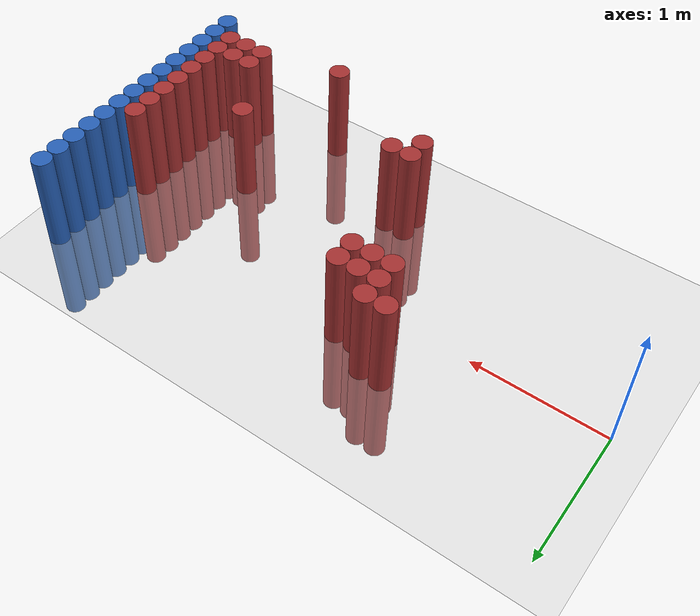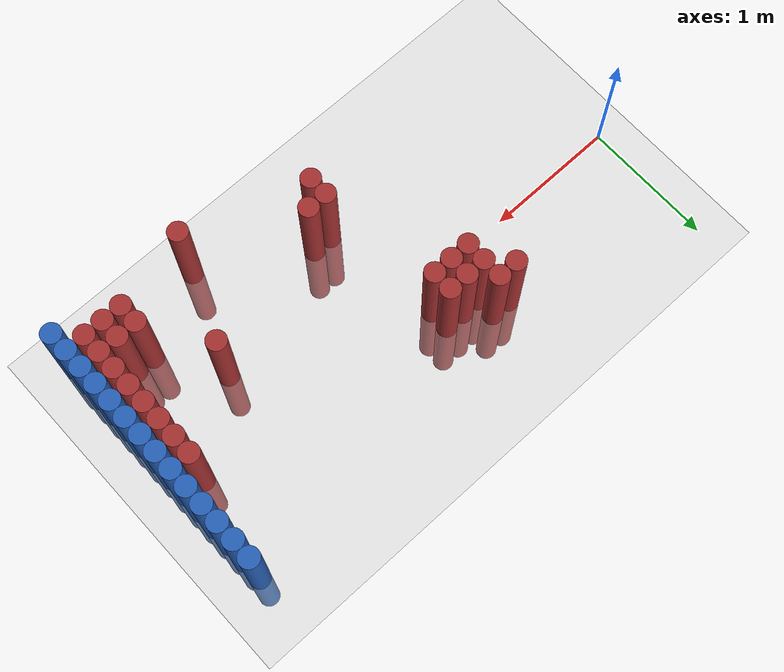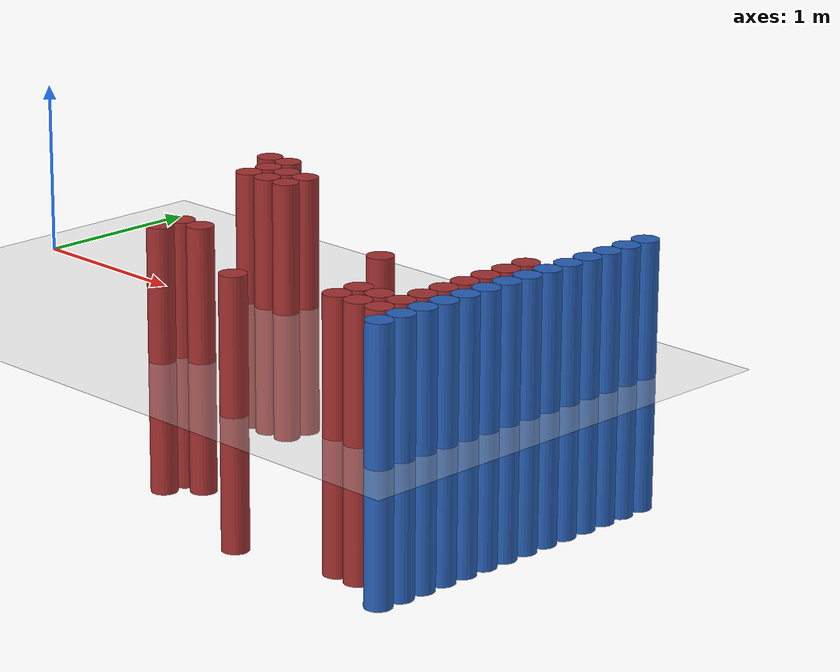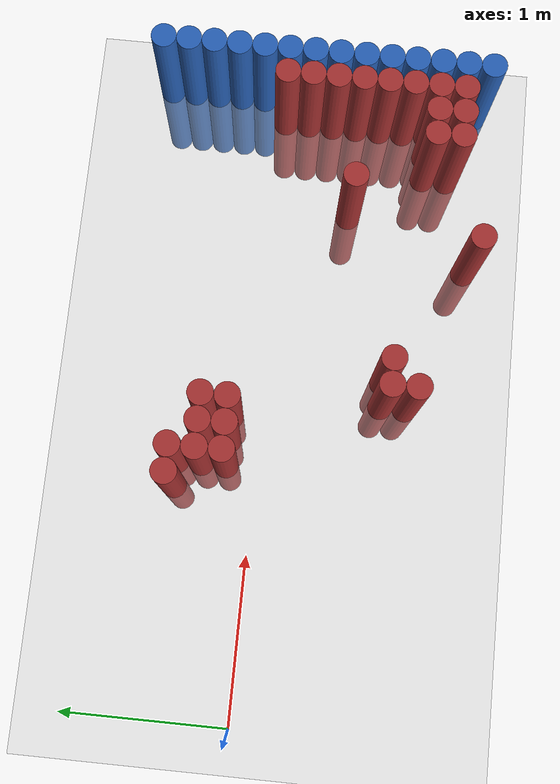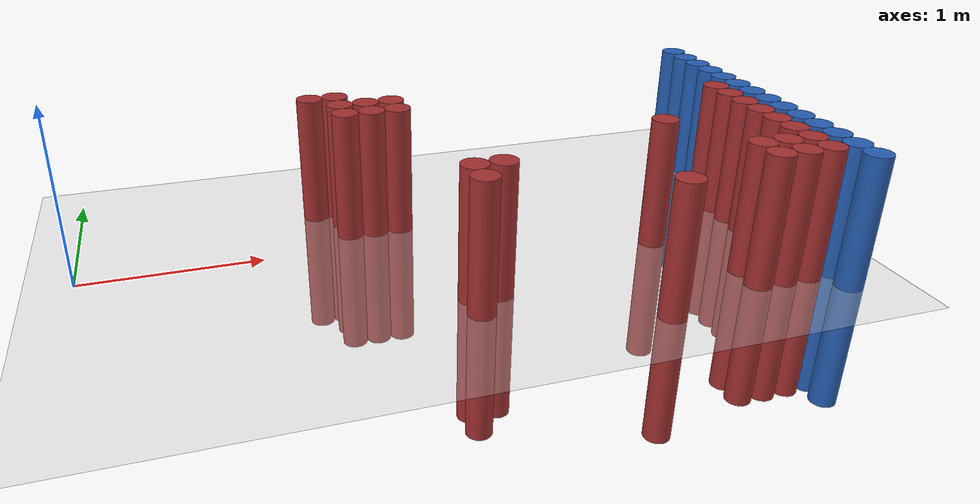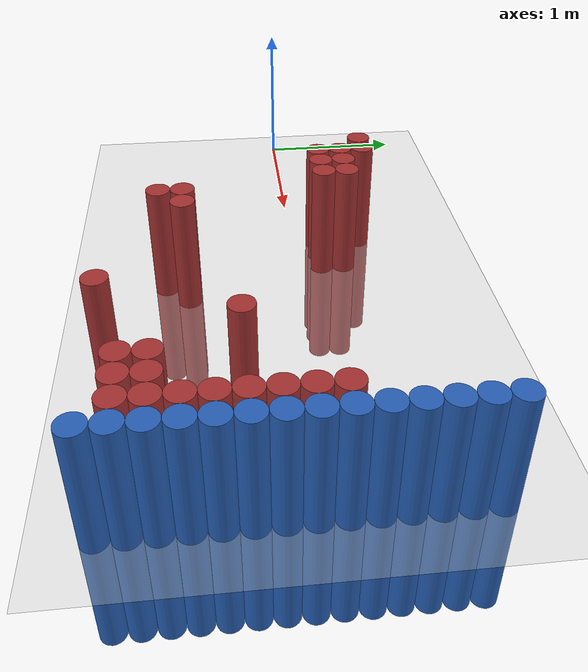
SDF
<sdf version="1.6">
 <world name="default">
  <model name="ground_plane">
   <static>1</static>
   <link name="link">
    <collision name="collision">
     <geometry><plane><normal>0 0 1</normal><size>100 100</size></plane></geometry>
     <surface><friction><ode><mu>100</mu><mu2>50</mu2></ode></friction></surface>
    </collision>
    <visual name="visual">
     <cast_shadows>0</cast_shadows>
     <geometry><plane><normal>0 0 1</normal><size>100 100</size></plane></geometry>
     <material>
      <script><uri>file://media/materials/scripts/gazebo.material</uri><name>Gazebo/Grey</name></script>
     </material>
    </visual>
   </link>
  </model>
  <model name="unit_cylinder_98">
   <static>1</static>
   <pose>3.925000 -1.175000 0.000000 0.000000 0.000000 0.000000</pose>
   <link name="link">
    <inertial>
     <mass>1</mass>
     <inertia><ixx>0.145833</ixx><ixy>0</ixy><ixz>0</ixz><iyy>0.145833</iyy><iyz>0</iyz><izz>0.125</izz></inertia>
    </inertial>
    <collision name="collision">
     <geometry><cylinder><radius>0.075000</radius><length>1.5</length></cylinder></geometry>
    </collision>
    <visual name="visual">
     <geometry><cylinder><radius>0.075000</radius><length>1.5</length></cylinder></geometry>
     <material>
      <ambient>0.152000 0.379000 0.720000 1</ambient>
      <diffuse>0.152000 0.379000 0.720000 1</diffuse>
     </material>
     <material>
      <script><name>Gazebo/Grey</name><uri>file://media/materials/scripts/gazebo.material</uri></script>
     </material>
    </visual>
   </link>
  </model>
  <model name="unit_cylinder_100">
   <static>1</static>
   <pose>3.925000 -1.025000 0.000000 0.000000 0.000000 0.000000</pose>
   <link name="link">
    <inertial>
     <mass>1</mass>
     <inertia><ixx>0.145833</ixx><ixy>0</ixy><ixz>0</ixz><iyy>0.145833</iyy><iyz>0</iyz><izz>0.125</izz></inertia>
    </inertial>
    <collision name="collision">
     <geometry><cylinder><radius>0.075000</radius><length>1.5</length></cylinder></geometry>
    </collision>
    <visual name="visual">
     <geometry><cylinder><radius>0.075000</radius><length>1.5</length></cylinder></geometry>
     <material>
      <ambient>0.152000 0.379000 0.720000 1</ambient>
      <diffuse>0.152000 0.379000 0.720000 1</diffuse>
     </material>
     <material>
      <script><name>Gazebo/Grey</name><uri>file://media/materials/scripts/gazebo.material</uri></script>
     </material>
    </visual>
   </link>
  </model>
  <model name="unit_cylinder_102">
   <static>1</static>
   <pose>3.925000 -0.875000 0.000000 0.000000 0.000000 0.000000</pose>
   <link name="link">
    <inertial>
     <mass>1</mass>
     <inertia><ixx>0.145833</ixx><ixy>0</ixy><ixz>0</ixz><iyy>0.145833</iyy><iyz>0</iyz><izz>0.125</izz></inertia>
    </inertial>
    <collision name="collision">
     <geometry><cylinder><radius>0.075000</radius><length>1.5</length></cylinder></geometry>
    </collision>
    <visual name="visual">
     <geometry><cylinder><radius>0.075000</radius><length>1.5</length></cylinder></geometry>
     <material>
      <ambient>0.152000 0.379000 0.720000 1</ambient>
      <diffuse>0.152000 0.379000 0.720000 1</diffuse>
     </material>
     <material>
      <script><name>Gazebo/Grey</name><uri>file://media/materials/scripts/gazebo.material</uri></script>
     </material>
    </visual>
   </link>
  </model>
  <model name="unit_cylinder_104">
   <static>1</static>
   <pose>3.925000 -0.725000 0.000000 0.000000 0.000000 0.000000</pose>
   <link name="link">
    <inertial>
     <mass>1</mass>
     <inertia><ixx>0.145833</ixx><ixy>0</ixy><ixz>0</ixz><iyy>0.145833</iyy><iyz>0</iyz><izz>0.125</izz></inertia>
    </inertial>
    <collision name="collision">
     <geometry><cylinder><radius>0.075000</radius><length>1.5</length></cylinder></geometry>
    </collision>
    <visual name="visual">
     <geometry><cylinder><radius>0.075000</radius><length>1.5</length></cylinder></geometry>
     <material>
      <ambient>0.152000 0.379000 0.720000 1</ambient>
      <diffuse>0.152000 0.379000 0.720000 1</diffuse>
     </material>
     <material>
      <script><name>Gazebo/Grey</name><uri>file://media/materials/scripts/gazebo.material</uri></script>
     </material>
    </visual>
   </link>
  </model>
  <model name="unit_cylinder_106">
   <static>1</static>
   <pose>3.925000 -0.575000 0.000000 0.000000 0.000000 0.000000</pose>
   <link name="link">
    <inertial>
     <mass>1</mass>
     <inertia><ixx>0.145833</ixx><ixy>0</ixy><ixz>0</ixz><iyy>0.145833</iyy><iyz>0</iyz><izz>0.125</izz></inertia>
    </inertial>
    <collision name="collision">
     <geometry><cylinder><radius>0.075000</radius><length>1.5</length></cylinder></geometry>
    </collision>
    <visual name="visual">
     <geometry><cylinder><radius>0.075000</radius><length>1.5</length></cylinder></geometry>
     <material>
      <ambient>0.152000 0.379000 0.720000 1</ambient>
      <diffuse>0.152000 0.379000 0.720000 1</diffuse>
     </material>
     <material>
      <script><name>Gazebo/Grey</name><uri>file://media/materials/scripts/gazebo.material</uri></script>
     </material>
    </visual>
   </link>
  </model>
  <model name="unit_cylinder_108">
   <static>1</static>
   <pose>3.925000 -0.425000 0.000000 0.000000 0.000000 0.000000</pose>
   <link name="link">
    <inertial>
     <mass>1</mass>
     <inertia><ixx>0.145833</ixx><ixy>0</ixy><ixz>0</ixz><iyy>0.145833</iyy><iyz>0</iyz><izz>0.125</izz></inertia>
    </inertial>
    <collision name="collision">
     <geometry><cylinder><radius>0.075000</radius><length>1.5</length></cylinder></geometry>
    </collision>
    <visual name="visual">
     <geometry><cylinder><radius>0.075000</radius><length>1.5</length></cylinder></geometry>
     <material>
      <ambient>0.152000 0.379000 0.720000 1</ambient>
      <diffuse>0.152000 0.379000 0.720000 1</diffuse>
     </material>
     <material>
      <script><name>Gazebo/Grey</name><uri>file://media/materials/scripts/gazebo.material</uri></script>
     </material>
    </visual>
   </link>
  </model>
  <model name="unit_cylinder_110">
   <static>1</static>
   <pose>3.925000 -0.275000 0.000000 0.000000 0.000000 0.000000</pose>
   <link name="link">
    <inertial>
     <mass>1</mass>
     <inertia><ixx>0.145833</ixx><ixy>0</ixy><ixz>0</ixz><iyy>0.145833</iyy><iyz>0</iyz><izz>0.125</izz></inertia>
    </inertial>
    <collision name="collision">
     <geometry><cylinder><radius>0.075000</radius><length>1.5</length></cylinder></geometry>
    </collision>
    <visual name="visual">
     <geometry><cylinder><radius>0.075000</radius><length>1.5</length></cylinder></geometry>
     <material>
      <ambient>0.152000 0.379000 0.720000 1</ambient>
      <diffuse>0.152000 0.379000 0.720000 1</diffuse>
     </material>
     <material>
      <script><name>Gazebo/Grey</name><uri>file://media/materials/scripts/gazebo.material</uri></script>
     </material>
    </visual>
   </link>
  </model>
  <model name="unit_cylinder_112">
   <static>1</static>
   <pose>3.925000 -0.125000 0.000000 0.000000 0.000000 0.000000</pose>
   <link name="link">
    <inertial>
     <mass>1</mass>
     <inertia><ixx>0.145833</ixx><ixy>0</ixy><ixz>0</ixz><iyy>0.145833</iyy><iyz>0</iyz><izz>0.125</izz></inertia>
    </inertial>
    <collision name="collision">
     <geometry><cylinder><radius>0.075000</radius><length>1.5</length></cylinder></geometry>
    </collision>
    <visual name="visual">
     <geometry><cylinder><radius>0.075000</radius><length>1.5</length></cylinder></geometry>
     <material>
      <ambient>0.152000 0.379000 0.720000 1</ambient>
      <diffuse>0.152000 0.379000 0.720000 1</diffuse>
     </material>
     <material>
      <script><name>Gazebo/Grey</name><uri>file://media/materials/scripts/gazebo.material</uri></script>
     </material>
    </visual>
   </link>
  </model>
  <model name="unit_cylinder_114">
   <static>1</static>
   <pose>3.925000 0.025000 0.000000 0.000000 0.000000 0.000000</pose>
   <link name="link">
    <inertial>
     <mass>1</mass>
     <inertia><ixx>0.145833</ixx><ixy>0</ixy><ixz>0</ixz><iyy>0.145833</iyy><iyz>0</iyz><izz>0.125</izz></inertia>
    </inertial>
    <collision name="collision">
     <geometry><cylinder><radius>0.075000</radius><length>1.5</length></cylinder></geometry>
    </collision>
    <visual name="visual">
     <geometry><cylinder><radius>0.075000</radius><length>1.5</length></cylinder></geometry>
     <material>
      <ambient>0.152000 0.379000 0.720000 1</ambient>
      <diffuse>0.152000 0.379000 0.720000 1</diffuse>
     </material>
     <material>
      <script><name>Gazebo/Grey</name><uri>file://media/materials/scripts/gazebo.material</uri></script>
     </material>
    </visual>
   </link>
  </model>
  <model name="unit_cylinder_116">
   <static>1</static>
   <pose>3.925000 0.175000 0.000000 0.000000 0.000000 0.000000</pose>
   <link name="link">
    <inertial>
     <mass>1</mass>
     <inertia><ixx>0.145833</ixx><ixy>0</ixy><ixz>0</ixz><iyy>0.145833</iyy><iyz>0</iyz><izz>0.125</izz></inertia>
    </inertial>
    <collision name="collision">
     <geometry><cylinder><radius>0.075000</radius><length>1.5</length></cylinder></geometry>
    </collision>
    <visual name="visual">
     <geometry><cylinder><radius>0.075000</radius><length>1.5</length></cylinder></geometry>
     <material>
      <ambient>0.152000 0.379000 0.720000 1</ambient>
      <diffuse>0.152000 0.379000 0.720000 1</diffuse>
     </material>
     <material>
      <script><name>Gazebo/Grey</name><uri>file://media/materials/scripts/gazebo.material</uri></script>
     </material>
    </visual>
   </link>
  </model>
  <model name="unit_cylinder_118">
   <static>1</static>
   <pose>3.925000 0.325000 0.000000 0.000000 0.000000 0.000000</pose>
   <link name="link">
    <inertial>
     <mass>1</mass>
     <inertia><ixx>0.145833</ixx><ixy>0</ixy><ixz>0</ixz><iyy>0.145833</iyy><iyz>0</iyz><izz>0.125</izz></inertia>
    </inertial>
    <collision name="collision">
     <geometry><cylinder><radius>0.075000</radius><length>1.5</length></cylinder></geometry>
    </collision>
    <visual name="visual">
     <geometry><cylinder><radius>0.075000</radius><length>1.5</length></cylinder></geometry>
     <material>
      <ambient>0.152000 0.379000 0.720000 1</ambient>
      <diffuse>0.152000 0.379000 0.720000 1</diffuse>
     </material>
     <material>
      <script><name>Gazebo/Grey</name><uri>file://media/materials/scripts/gazebo.material</uri></script>
     </material>
    </visual>
   </link>
  </model>
  <model name="unit_cylinder_120">
   <static>1</static>
   <pose>3.925000 0.475000 0.000000 0.000000 0.000000 0.000000</pose>
   <link name="link">
    <inertial>
     <mass>1</mass>
     <inertia><ixx>0.145833</ixx><ixy>0</ixy><ixz>0</ixz><iyy>0.145833</iyy><iyz>0</iyz><izz>0.125</izz></inertia>
    </inertial>
    <collision name="collision">
     <geometry><cylinder><radius>0.075000</radius><length>1.5</length></cylinder></geometry>
    </collision>
    <visual name="visual">
     <geometry><cylinder><radius>0.075000</radius><length>1.5</length></cylinder></geometry>
     <material>
      <ambient>0.152000 0.379000 0.720000 1</ambient>
      <diffuse>0.152000 0.379000 0.720000 1</diffuse>
     </material>
     <material>
      <script><name>Gazebo/Grey</name><uri>file://media/materials/scripts/gazebo.material</uri></script>
     </material>
    </visual>
   </link>
  </model>
  <model name="unit_cylinder_122">
   <static>1</static>
   <pose>3.925000 0.625000 0.000000 0.000000 0.000000 0.000000</pose>
   <link name="link">
    <inertial>
     <mass>1</mass>
     <inertia><ixx>0.145833</ixx><ixy>0</ixy><ixz>0</ixz><iyy>0.145833</iyy><iyz>0</iyz><izz>0.125</izz></inertia>
    </inertial>
    <collision name="collision">
     <geometry><cylinder><radius>0.075000</radius><length>1.5</length></cylinder></geometry>
    </collision>
    <visual name="visual">
     <geometry><cylinder><radius>0.075000</radius><length>1.5</length></cylinder></geometry>
     <material>
      <ambient>0.152000 0.379000 0.720000 1</ambient>
      <diffuse>0.152000 0.379000 0.720000 1</diffuse>
     </material>
     <material>
      <script><name>Gazebo/Grey</name><uri>file://media/materials/scripts/gazebo.material</uri></script>
     </material>
    </visual>
   </link>
  </model>
  <model name="unit_cylinder_124">
   <static>1</static>
   <pose>3.925000 0.775000 0.000000 0.000000 0.000000 0.000000</pose>
   <link name="link">
    <inertial>
     <mass>1</mass>
     <inertia><ixx>0.145833</ixx><ixy>0</ixy><ixz>0</ixz><iyy>0.145833</iyy><iyz>0</iyz><izz>0.125</izz></inertia>
    </inertial>
    <collision name="collision">
     <geometry><cylinder><radius>0.075000</radius><length>1.5</length></cylinder></geometry>
    </collision>
    <visual name="visual">
     <geometry><cylinder><radius>0.075000</radius><length>1.5</length></cylinder></geometry>
     <material>
      <ambient>0.152000 0.379000 0.720000 1</ambient>
      <diffuse>0.152000 0.379000 0.720000 1</diffuse>
     </material>
     <material>
      <script><name>Gazebo/Grey</name><uri>file://media/materials/scripts/gazebo.material</uri></script>
     </material>
    </visual>
   </link>
  </model>
  <model name="unit_cylinder_312">
   <static>1</static>
   <pose>1.375000 0.475000 0.000000 0.000000 0.000000 0.000000</pose>
   <link name="link">
    <inertial>
     <mass>1</mass>
     <inertia><ixx>0.145833</ixx><ixy>0</ixy><ixz>0</ixz><iyy>0.145833</iyy><iyz>0</iyz><izz>0.125</izz></inertia>
    </inertial>
    <collision name="collision">
     <geometry><cylinder><radius>0.075000</radius><length>1.5</length></cylinder></geometry>
    </collision>
    <visual name="visual">
     <geometry><cylinder><radius>0.075000</radius><length>1.5</length></cylinder></geometry>
     <material>
      <ambient>0.648000 0.192000 0.192000 1</ambient>
      <diffuse>0.648000 0.192000 0.192000 1</diffuse>
     </material>
     <material>
      <script><name>Gazebo/Grey</name><uri>file://media/materials/scripts/gazebo.material</uri></script>
     </material>
    </visual>
   </link>
  </model>
  <model name="unit_cylinder_314">
   <static>1</static>
   <pose>1.525000 0.175000 0.000000 0.000000 0.000000 0.000000</pose>
   <link name="link">
    <inertial>
     <mass>1</mass>
     <inertia><ixx>0.145833</ixx><ixy>0</ixy><ixz>0</ixz><iyy>0.145833</iyy><iyz>0</iyz><izz>0.125</izz></inertia>
    </inertial>
    <collision name="collision">
     <geometry><cylinder><radius>0.075000</radius><length>1.5</length></cylinder></geometry>
    </collision>
    <visual name="visual">
     <geometry><cylinder><radius>0.075000</radius><length>1.5</length></cylinder></geometry>
     <material>
      <ambient>0.648000 0.192000 0.192000 1</ambient>
      <diffuse>0.648000 0.192000 0.192000 1</diffuse>
     </material>
     <material>
      <script><name>Gazebo/Grey</name><uri>file://media/materials/scripts/gazebo.material</uri></script>
     </material>
    </visual>
   </link>
  </model>
  <model name="unit_cylinder_315">
   <static>1</static>
   <pose>1.525000 0.325000 0.000000 0.000000 0.000000 0.000000</pose>
   <link name="link">
    <inertial>
     <mass>1</mass>
     <inertia><ixx>0.145833</ixx><ixy>0</ixy><ixz>0</ixz><iyy>0.145833</iyy><iyz>0</iyz><izz>0.125</izz></inertia>
    </inertial>
    <collision name="collision">
     <geometry><cylinder><radius>0.075000</radius><length>1.5</length></cylinder></geometry>
    </collision>
    <visual name="visual">
     <geometry><cylinder><radius>0.075000</radius><length>1.5</length></cylinder></geometry>
     <material>
      <ambient>0.648000 0.192000 0.192000 1</ambient>
      <diffuse>0.648000 0.192000 0.192000 1</diffuse>
     </material>
     <material>
      <script><name>Gazebo/Grey</name><uri>file://media/materials/scripts/gazebo.material</uri></script>
     </material>
    </visual>
   </link>
  </model>
  <model name="unit_cylinder_316">
   <static>1</static>
   <pose>1.525000 0.475000 0.000000 0.000000 0.000000 0.000000</pose>
   <link name="link">
    <inertial>
     <mass>1</mass>
     <inertia><ixx>0.145833</ixx><ixy>0</ixy><ixz>0</ixz><iyy>0.145833</iyy><iyz>0</iyz><izz>0.125</izz></inertia>
    </inertial>
    <collision name="collision">
     <geometry><cylinder><radius>0.075000</radius><length>1.5</length></cylinder></geometry>
    </collision>
    <visual name="visual">
     <geometry><cylinder><radius>0.075000</radius><length>1.5</length></cylinder></geometry>
     <material>
      <ambient>0.648000 0.192000 0.192000 1</ambient>
      <diffuse>0.648000 0.192000 0.192000 1</diffuse>
     </material>
     <material>
      <script><name>Gazebo/Grey</name><uri>file://media/materials/scripts/gazebo.material</uri></script>
     </material>
    </visual>
   </link>
  </model>
  <model name="unit_cylinder_319">
   <static>1</static>
   <pose>1.675000 0.175000 0.000000 0.000000 0.000000 0.000000</pose>
   <link name="link">
    <inertial>
     <mass>1</mass>
     <inertia><ixx>0.145833</ixx><ixy>0</ixy><ixz>0</ixz><iyy>0.145833</iyy><iyz>0</iyz><izz>0.125</izz></inertia>
    </inertial>
    <collision name="collision">
     <geometry><cylinder><radius>0.075000</radius><length>1.5</length></cylinder></geometry>
    </collision>
    <visual name="visual">
     <geometry><cylinder><radius>0.075000</radius><length>1.5</length></cylinder></geometry>
     <material>
      <ambient>0.648000 0.192000 0.192000 1</ambient>
      <diffuse>0.648000 0.192000 0.192000 1</diffuse>
     </material>
     <material>
      <script><name>Gazebo/Grey</name><uri>file://media/materials/scripts/gazebo.material</uri></script>
     </material>
    </visual>
   </link>
  </model>
  <model name="unit_cylinder_320">
   <static>1</static>
   <pose>1.675000 0.325000 0.000000 0.000000 0.000000 0.000000</pose>
   <link name="link">
    <inertial>
     <mass>1</mass>
     <inertia><ixx>0.145833</ixx><ixy>0</ixy><ixz>0</ixz><iyy>0.145833</iyy><iyz>0</iyz><izz>0.125</izz></inertia>
    </inertial>
    <collision name="collision">
     <geometry><cylinder><radius>0.075000</radius><length>1.5</length></cylinder></geometry>
    </collision>
    <visual name="visual">
     <geometry><cylinder><radius>0.075000</radius><length>1.5</length></cylinder></geometry>
     <material>
      <ambient>0.648000 0.192000 0.192000 1</ambient>
      <diffuse>0.648000 0.192000 0.192000 1</diffuse>
     </material>
     <material>
      <script><name>Gazebo/Grey</name><uri>file://media/materials/scripts/gazebo.material</uri></script>
     </material>
    </visual>
   </link>
  </model>
  <model name="unit_cylinder_322">
   <static>1</static>
   <pose>1.825000 0.175000 0.000000 0.000000 0.000000 0.000000</pose>
   <link name="link">
    <inertial>
     <mass>1</mass>
     <inertia><ixx>0.145833</ixx><ixy>0</ixy><ixz>0</ixz><iyy>0.145833</iyy><iyz>0</iyz><izz>0.125</izz></inertia>
    </inertial>
    <collision name="collision">
     <geometry><cylinder><radius>0.075000</radius><length>1.5</length></cylinder></geometry>
    </collision>
    <visual name="visual">
     <geometry><cylinder><radius>0.075000</radius><length>1.5</length></cylinder></geometry>
     <material>
      <ambient>0.648000 0.192000 0.192000 1</ambient>
      <diffuse>0.648000 0.192000 0.192000 1</diffuse>
     </material>
     <material>
      <script><name>Gazebo/Grey</name><uri>file://media/materials/scripts/gazebo.material</uri></script>
     </material>
    </visual>
   </link>
  </model>
  <model name="unit_cylinder_323">
   <static>1</static>
   <pose>1.825000 0.325000 0.000000 0.000000 0.000000 0.000000</pose>
   <link name="link">
    <inertial>
     <mass>1</mass>
     <inertia><ixx>0.145833</ixx><ixy>0</ixy><ixz>0</ixz><iyy>0.145833</iyy><iyz>0</iyz><izz>0.125</izz></inertia>
    </inertial>
    <collision name="collision">
     <geometry><cylinder><radius>0.075000</radius><length>1.5</length></cylinder></geometry>
    </collision>
    <visual name="visual">
     <geometry><cylinder><radius>0.075000</radius><length>1.5</length></cylinder></geometry>
     <material>
      <ambient>0.648000 0.192000 0.192000 1</ambient>
      <diffuse>0.648000 0.192000 0.192000 1</diffuse>
     </material>
     <material>
      <script><name>Gazebo/Grey</name><uri>file://media/materials/scripts/gazebo.material</uri></script>
     </material>
    </visual>
   </link>
  </model>
  <model name="unit_cylinder_324">
   <static>1</static>
   <pose>1.975000 -0.875000 0.000000 0.000000 0.000000 0.000000</pose>
   <link name="link">
    <inertial>
     <mass>1</mass>
     <inertia><ixx>0.145833</ixx><ixy>0</ixy><ixz>0</ixz><iyy>0.145833</iyy><iyz>0</iyz><izz>0.125</izz></inertia>
    </inertial>
    <collision name="collision">
     <geometry><cylinder><radius>0.075000</radius><length>1.5</length></cylinder></geometry>
    </collision>
    <visual name="visual">
     <geometry><cylinder><radius>0.075000</radius><length>1.5</length></cylinder></geometry>
     <material>
      <ambient>0.648000 0.192000 0.192000 1</ambient>
      <diffuse>0.648000 0.192000 0.192000 1</diffuse>
     </material>
     <material>
      <script><name>Gazebo/Grey</name><uri>file://media/materials/scripts/gazebo.material</uri></script>
     </material>
    </visual>
   </link>
  </model>
  <model name="unit_cylinder_325">
   <static>1</static>
   <pose>1.975000 -0.725000 0.000000 0.000000 0.000000 0.000000</pose>
   <link name="link">
    <inertial>
     <mass>1</mass>
     <inertia><ixx>0.145833</ixx><ixy>0</ixy><ixz>0</ixz><iyy>0.145833</iyy><iyz>0</iyz><izz>0.125</izz></inertia>
    </inertial>
    <collision name="collision">
     <geometry><cylinder><radius>0.075000</radius><length>1.5</length></cylinder></geometry>
    </collision>
    <visual name="visual">
     <geometry><cylinder><radius>0.075000</radius><length>1.5</length></cylinder></geometry>
     <material>
      <ambient>0.648000 0.192000 0.192000 1</ambient>
      <diffuse>0.648000 0.192000 0.192000 1</diffuse>
     </material>
     <material>
      <script><name>Gazebo/Grey</name><uri>file://media/materials/scripts/gazebo.material</uri></script>
     </material>
    </visual>
   </link>
  </model>
  <model name="unit_cylinder_326">
   <static>1</static>
   <pose>2.125000 -0.725000 0.000000 0.000000 0.000000 0.000000</pose>
   <link name="link">
    <inertial>
     <mass>1</mass>
     <inertia><ixx>0.145833</ixx><ixy>0</ixy><ixz>0</ixz><iyy>0.145833</iyy><iyz>0</iyz><izz>0.125</izz></inertia>
    </inertial>
    <collision name="collision">
     <geometry><cylinder><radius>0.075000</radius><length>1.5</length></cylinder></geometry>
    </collision>
    <visual name="visual">
     <geometry><cylinder><radius>0.075000</radius><length>1.5</length></cylinder></geometry>
     <material>
      <ambient>0.648000 0.192000 0.192000 1</ambient>
      <diffuse>0.648000 0.192000 0.192000 1</diffuse>
     </material>
     <material>
      <script><name>Gazebo/Grey</name><uri>file://media/materials/scripts/gazebo.material</uri></script>
     </material>
    </visual>
   </link>
  </model>
  <model name="unit_cylinder_335">
   <static>1</static>
   <pose>2.875000 -1.175000 0.000000 0.000000 0.000000 0.000000</pose>
   <link name="link">
    <inertial>
     <mass>1</mass>
     <inertia><ixx>0.145833</ixx><ixy>0</ixy><ixz>0</ixz><iyy>0.145833</iyy><iyz>0</iyz><izz>0.125</izz></inertia>
    </inertial>
    <collision name="collision">
     <geometry><cylinder><radius>0.075000</radius><length>1.5</length></cylinder></geometry>
    </collision>
    <visual name="visual">
     <geometry><cylinder><radius>0.075000</radius><length>1.5</length></cylinder></geometry>
     <material>
      <ambient>0.648000 0.192000 0.192000 1</ambient>
      <diffuse>0.648000 0.192000 0.192000 1</diffuse>
     </material>
     <material>
      <script><name>Gazebo/Grey</name><uri>file://media/materials/scripts/gazebo.material</uri></script>
     </material>
    </visual>
   </link>
  </model>
  <model name="unit_cylinder_340">
   <static>1</static>
   <pose>3.175000 -0.425000 0.000000 0.000000 0.000000 0.000000</pose>
   <link name="link">
    <inertial>
     <mass>1</mass>
     <inertia><ixx>0.145833</ixx><ixy>0</ixy><ixz>0</ixz><iyy>0.145833</iyy><iyz>0</iyz><izz>0.125</izz></inertia>
    </inertial>
    <collision name="collision">
     <geometry><cylinder><radius>0.075000</radius><length>1.5</length></cylinder></geometry>
    </collision>
    <visual name="visual">
     <geometry><cylinder><radius>0.075000</radius><length>1.5</length></cylinder></geometry>
     <material>
      <ambient>0.648000 0.192000 0.192000 1</ambient>
      <diffuse>0.648000 0.192000 0.192000 1</diffuse>
     </material>
     <material>
      <script><name>Gazebo/Grey</name><uri>file://media/materials/scripts/gazebo.material</uri></script>
     </material>
    </visual>
   </link>
  </model>
  <model name="unit_cylinder_345">
   <static>1</static>
   <pose>3.475000 -1.025000 0.000000 0.000000 0.000000 0.000000</pose>
   <link name="link">
    <inertial>
     <mass>1</mass>
     <inertia><ixx>0.145833</ixx><ixy>0</ixy><ixz>0</ixz><iyy>0.145833</iyy><iyz>0</iyz><izz>0.125</izz></inertia>
    </inertial>
    <collision name="collision">
     <geometry><cylinder><radius>0.075000</radius><length>1.5</length></cylinder></geometry>
    </collision>
    <visual name="visual">
     <geometry><cylinder><radius>0.075000</radius><length>1.5</length></cylinder></geometry>
     <material>
      <ambient>0.648000 0.192000 0.192000 1</ambient>
      <diffuse>0.648000 0.192000 0.192000 1</diffuse>
     </material>
     <material>
      <script><name>Gazebo/Grey</name><uri>file://media/materials/scripts/gazebo.material</uri></script>
     </material>
    </visual>
   </link>
  </model>
  <model name="unit_cylinder_346">
   <static>1</static>
   <pose>3.475000 -0.875000 0.000000 0.000000 0.000000 0.000000</pose>
   <link name="link">
    <inertial>
     <mass>1</mass>
     <inertia><ixx>0.145833</ixx><ixy>0</ixy><ixz>0</ixz><iyy>0.145833</iyy><iyz>0</iyz><izz>0.125</izz></inertia>
    </inertial>
    <collision name="collision">
     <geometry><cylinder><radius>0.075000</radius><length>1.5</length></cylinder></geometry>
    </collision>
    <visual name="visual">
     <geometry><cylinder><radius>0.075000</radius><length>1.5</length></cylinder></geometry>
     <material>
      <ambient>0.648000 0.192000 0.192000 1</ambient>
      <diffuse>0.648000 0.192000 0.192000 1</diffuse>
     </material>
     <material>
      <script><name>Gazebo/Grey</name><uri>file://media/materials/scripts/gazebo.material</uri></script>
     </material>
    </visual>
   </link>
  </model>
  <model name="unit_cylinder_349">
   <static>1</static>
   <pose>3.625000 -1.025000 0.000000 0.000000 0.000000 0.000000</pose>
   <link name="link">
    <inertial>
     <mass>1</mass>
     <inertia><ixx>0.145833</ixx><ixy>0</ixy><ixz>0</ixz><iyy>0.145833</iyy><iyz>0</iyz><izz>0.125</izz></inertia>
    </inertial>
    <collision name="collision">
     <geometry><cylinder><radius>0.075000</radius><length>1.5</length></cylinder></geometry>
    </collision>
    <visual name="visual">
     <geometry><cylinder><radius>0.075000</radius><length>1.5</length></cylinder></geometry>
     <material>
      <ambient>0.648000 0.192000 0.192000 1</ambient>
      <diffuse>0.648000 0.192000 0.192000 1</diffuse>
     </material>
     <material>
      <script><name>Gazebo/Grey</name><uri>file://media/materials/scripts/gazebo.material</uri></script>
     </material>
    </visual>
   </link>
  </model>
  <model name="unit_cylinder_350">
   <static>1</static>
   <pose>3.625000 -0.875000 0.000000 0.000000 0.000000 0.000000</pose>
   <link name="link">
    <inertial>
     <mass>1</mass>
     <inertia><ixx>0.145833</ixx><ixy>0</ixy><ixz>0</ixz><iyy>0.145833</iyy><iyz>0</iyz><izz>0.125</izz></inertia>
    </inertial>
    <collision name="collision">
     <geometry><cylinder><radius>0.075000</radius><length>1.5</length></cylinder></geometry>
    </collision>
    <visual name="visual">
     <geometry><cylinder><radius>0.075000</radius><length>1.5</length></cylinder></geometry>
     <material>
      <ambient>0.648000 0.192000 0.192000 1</ambient>
      <diffuse>0.648000 0.192000 0.192000 1</diffuse>
     </material>
     <material>
      <script><name>Gazebo/Grey</name><uri>file://media/materials/scripts/gazebo.material</uri></script>
     </material>
    </visual>
   </link>
  </model>
  <model name="unit_cylinder_353">
   <static>1</static>
   <pose>3.775000 -1.025000 0.000000 0.000000 0.000000 0.000000</pose>
   <link name="link">
    <inertial>
     <mass>1</mass>
     <inertia><ixx>0.145833</ixx><ixy>0</ixy><ixz>0</ixz><iyy>0.145833</iyy><iyz>0</iyz><izz>0.125</izz></inertia>
    </inertial>
    <collision name="collision">
     <geometry><cylinder><radius>0.075000</radius><length>1.5</length></cylinder></geometry>
    </collision>
    <visual name="visual">
     <geometry><cylinder><radius>0.075000</radius><length>1.5</length></cylinder></geometry>
     <material>
      <ambient>0.648000 0.192000 0.192000 1</ambient>
      <diffuse>0.648000 0.192000 0.192000 1</diffuse>
     </material>
     <material>
      <script><name>Gazebo/Grey</name><uri>file://media/materials/scripts/gazebo.material</uri></script>
     </material>
    </visual>
   </link>
  </model>
  <model name="unit_cylinder_354">
   <static>1</static>
   <pose>3.775000 -0.875000 0.000000 0.000000 0.000000 0.000000</pose>
   <link name="link">
    <inertial>
     <mass>1</mass>
     <inertia><ixx>0.145833</ixx><ixy>0</ixy><ixz>0</ixz><iyy>0.145833</iyy><iyz>0</iyz><izz>0.125</izz></inertia>
    </inertial>
    <collision name="collision">
     <geometry><cylinder><radius>0.075000</radius><length>1.5</length></cylinder></geometry>
    </collision>
    <visual name="visual">
     <geometry><cylinder><radius>0.075000</radius><length>1.5</length></cylinder></geometry>
     <material>
      <ambient>0.648000 0.192000 0.192000 1</ambient>
      <diffuse>0.648000 0.192000 0.192000 1</diffuse>
     </material>
     <material>
      <script><name>Gazebo/Grey</name><uri>file://media/materials/scripts/gazebo.material</uri></script>
     </material>
    </visual>
   </link>
  </model>
  <model name="unit_cylinder_355">
   <static>1</static>
   <pose>3.775000 -0.725000 0.000000 0.000000 0.000000 0.000000</pose>
   <link name="link">
    <inertial>
     <mass>1</mass>
     <inertia><ixx>0.145833</ixx><ixy>0</ixy><ixz>0</ixz><iyy>0.145833</iyy><iyz>0</iyz><izz>0.125</izz></inertia>
    </inertial>
    <collision name="collision">
     <geometry><cylinder><radius>0.075000</radius><length>1.5</length></cylinder></geometry>
    </collision>
    <visual name="visual">
     <geometry><cylinder><radius>0.075000</radius><length>1.5</length></cylinder></geometry>
     <material>
      <ambient>0.648000 0.192000 0.192000 1</ambient>
      <diffuse>0.648000 0.192000 0.192000 1</diffuse>
     </material>
     <material>
      <script><name>Gazebo/Grey</name><uri>file://media/materials/scripts/gazebo.material</uri></script>
     </material>
    </visual>
   </link>
  </model>
  <model name="unit_cylinder_356">
   <static>1</static>
   <pose>3.775000 -0.575000 0.000000 0.000000 0.000000 0.000000</pose>
   <link name="link">
    <inertial>
     <mass>1</mass>
     <inertia><ixx>0.145833</ixx><ixy>0</ixy><ixz>0</ixz><iyy>0.145833</iyy><iyz>0</iyz><izz>0.125</izz></inertia>
    </inertial>
    <collision name="collision">
     <geometry><cylinder><radius>0.075000</radius><length>1.5</length></cylinder></geometry>
    </collision>
    <visual name="visual">
     <geometry><cylinder><radius>0.075000</radius><length>1.5</length></cylinder></geometry>
     <material>
      <ambient>0.648000 0.192000 0.192000 1</ambient>
      <diffuse>0.648000 0.192000 0.192000 1</diffuse>
     </material>
     <material>
      <script><name>Gazebo/Grey</name><uri>file://media/materials/scripts/gazebo.material</uri></script>
     </material>
    </visual>
   </link>
  </model>
  <model name="unit_cylinder_357">
   <static>1</static>
   <pose>3.775000 -0.425000 0.000000 0.000000 0.000000 0.000000</pose>
   <link name="link">
    <inertial>
     <mass>1</mass>
     <inertia><ixx>0.145833</ixx><ixy>0</ixy><ixz>0</ixz><iyy>0.145833</iyy><iyz>0</iyz><izz>0.125</izz></inertia>
    </inertial>
    <collision name="collision">
     <geometry><cylinder><radius>0.075000</radius><length>1.5</length></cylinder></geometry>
    </collision>
    <visual name="visual">
     <geometry><cylinder><radius>0.075000</radius><length>1.5</length></cylinder></geometry>
     <material>
      <ambient>0.648000 0.192000 0.192000 1</ambient>
      <diffuse>0.648000 0.192000 0.192000 1</diffuse>
     </material>
     <material>
      <script><name>Gazebo/Grey</name><uri>file://media/materials/scripts/gazebo.material</uri></script>
     </material>
    </visual>
   </link>
  </model>
  <model name="unit_cylinder_358">
   <static>1</static>
   <pose>3.775000 -0.275000 0.000000 0.000000 0.000000 0.000000</pose>
   <link name="link">
    <inertial>
     <mass>1</mass>
     <inertia><ixx>0.145833</ixx><ixy>0</ixy><ixz>0</ixz><iyy>0.145833</iyy><iyz>0</iyz><izz>0.125</izz></inertia>
    </inertial>
    <collision name="collision">
     <geometry><cylinder><radius>0.075000</radius><length>1.5</length></cylinder></geometry>
    </collision>
    <visual name="visual">
     <geometry><cylinder><radius>0.075000</radius><length>1.5</length></cylinder></geometry>
     <material>
      <ambient>0.648000 0.192000 0.192000 1</ambient>
      <diffuse>0.648000 0.192000 0.192000 1</diffuse>
     </material>
     <material>
      <script><name>Gazebo/Grey</name><uri>file://media/materials/scripts/gazebo.material</uri></script>
     </material>
    </visual>
   </link>
  </model>
  <model name="unit_cylinder_359">
   <static>1</static>
   <pose>3.775000 -0.125000 0.000000 0.000000 0.000000 0.000000</pose>
   <link name="link">
    <inertial>
     <mass>1</mass>
     <inertia><ixx>0.145833</ixx><ixy>0</ixy><ixz>0</ixz><iyy>0.145833</iyy><iyz>0</iyz><izz>0.125</izz></inertia>
    </inertial>
    <collision name="collision">
     <geometry><cylinder><radius>0.075000</radius><length>1.5</length></cylinder></geometry>
    </collision>
    <visual name="visual">
     <geometry><cylinder><radius>0.075000</radius><length>1.5</length></cylinder></geometry>
     <material>
      <ambient>0.648000 0.192000 0.192000 1</ambient>
      <diffuse>0.648000 0.192000 0.192000 1</diffuse>
     </material>
     <material>
      <script><name>Gazebo/Grey</name><uri>file://media/materials/scripts/gazebo.material</uri></script>
     </material>
    </visual>
   </link>
  </model>
  <model name="unit_cylinder_360">
   <static>1</static>
   <pose>3.775000 0.025000 0.000000 0.000000 0.000000 0.000000</pose>
   <link name="link">
    <inertial>
     <mass>1</mass>
     <inertia><ixx>0.145833</ixx><ixy>0</ixy><ixz>0</ixz><iyy>0.145833</iyy><iyz>0</iyz><izz>0.125</izz></inertia>
    </inertial>
    <collision name="collision">
     <geometry><cylinder><radius>0.075000</radius><length>1.5</length></cylinder></geometry>
    </collision>
    <visual name="visual">
     <geometry><cylinder><radius>0.075000</radius><length>1.5</length></cylinder></geometry>
     <material>
      <ambient>0.648000 0.192000 0.192000 1</ambient>
      <diffuse>0.648000 0.192000 0.192000 1</diffuse>
     </material>
     <material>
      <script><name>Gazebo/Grey</name><uri>file://media/materials/scripts/gazebo.material</uri></script>
     </material>
    </visual>
   </link>
  </model>
  <model name="unit_cylinder_374">
   <static>1</static>
   <pose>3.925000 -1.175000 0.000000 0.000000 0.000000 0.000000</pose>
   <link name="link">
    <inertial>
     <mass>1</mass>
     <inertia><ixx>0.145833</ixx><ixy>0</ixy><ixz>0</ixz><iyy>0.145833</iyy><iyz>0</iyz><izz>0.125</izz></inertia>
    </inertial>
    <collision name="collision">
     <geometry><cylinder><radius>0.075000</radius><length>1.5</length></cylinder></geometry>
    </collision>
    <visual name="visual">
     <geometry><cylinder><radius>0.075000</radius><length>1.5</length></cylinder></geometry>
     <material>
      <ambient>0.152000 0.379000 0.720000 1</ambient>
      <diffuse>0.152000 0.379000 0.720000 1</diffuse>
     </material>
     <material>
      <script><name>Gazebo/Grey</name><uri>file://media/materials/scripts/gazebo.material</uri></script>
     </material>
    </visual>
   </link>
  </model>
  <model name="unit_cylinder_375">
   <static>1</static>
   <pose>3.925000 -1.025000 0.000000 0.000000 0.000000 0.000000</pose>
   <link name="link">
    <inertial>
     <mass>1</mass>
     <inertia><ixx>0.145833</ixx><ixy>0</ixy><ixz>0</ixz><iyy>0.145833</iyy><iyz>0</iyz><izz>0.125</izz></inertia>
    </inertial>
    <collision name="collision">
     <geometry><cylinder><radius>0.075000</radius><length>1.5</length></cylinder></geometry>
    </collision>
    <visual name="visual">
     <geometry><cylinder><radius>0.075000</radius><length>1.5</length></cylinder></geometry>
     <material>
      <ambient>0.152000 0.379000 0.720000 1</ambient>
      <diffuse>0.152000 0.379000 0.720000 1</diffuse>
     </material>
     <material>
      <script><name>Gazebo/Grey</name><uri>file://media/materials/scripts/gazebo.material</uri></script>
     </material>
    </visual>
   </link>
  </model>
  <model name="unit_cylinder_376">
   <static>1</static>
   <pose>3.925000 -0.875000 0.000000 0.000000 0.000000 0.000000</pose>
   <link name="link">
    <inertial>
     <mass>1</mass>
     <inertia><ixx>0.145833</ixx><ixy>0</ixy><ixz>0</ixz><iyy>0.145833</iyy><iyz>0</iyz><izz>0.125</izz></inertia>
    </inertial>
    <collision name="collision">
     <geometry><cylinder><radius>0.075000</radius><length>1.5</length></cylinder></geometry>
    </collision>
    <visual name="visual">
     <geometry><cylinder><radius>0.075000</radius><length>1.5</length></cylinder></geometry>
     <material>
      <ambient>0.152000 0.379000 0.720000 1</ambient>
      <diffuse>0.152000 0.379000 0.720000 1</diffuse>
     </material>
     <material>
      <script><name>Gazebo/Grey</name><uri>file://media/materials/scripts/gazebo.material</uri></script>
     </material>
    </visual>
   </link>
  </model>
  <model name="unit_cylinder_377">
   <static>1</static>
   <pose>3.925000 -0.725000 0.000000 0.000000 0.000000 0.000000</pose>
   <link name="link">
    <inertial>
     <mass>1</mass>
     <inertia><ixx>0.145833</ixx><ixy>0</ixy><ixz>0</ixz><iyy>0.145833</iyy><iyz>0</iyz><izz>0.125</izz></inertia>
    </inertial>
    <collision name="collision">
     <geometry><cylinder><radius>0.075000</radius><length>1.5</length></cylinder></geometry>
    </collision>
    <visual name="visual">
     <geometry><cylinder><radius>0.075000</radius><length>1.5</length></cylinder></geometry>
     <material>
      <ambient>0.152000 0.379000 0.720000 1</ambient>
      <diffuse>0.152000 0.379000 0.720000 1</diffuse>
     </material>
     <material>
      <script><name>Gazebo/Grey</name><uri>file://media/materials/scripts/gazebo.material</uri></script>
     </material>
    </visual>
   </link>
  </model>
  <model name="unit_cylinder_378">
   <static>1</static>
   <pose>3.925000 -0.575000 0.000000 0.000000 0.000000 0.000000</pose>
   <link name="link">
    <inertial>
     <mass>1</mass>
     <inertia><ixx>0.145833</ixx><ixy>0</ixy><ixz>0</ixz><iyy>0.145833</iyy><iyz>0</iyz><izz>0.125</izz></inertia>
    </inertial>
    <collision name="collision">
     <geometry><cylinder><radius>0.075000</radius><length>1.5</length></cylinder></geometry>
    </collision>
    <visual name="visual">
     <geometry><cylinder><radius>0.075000</radius><length>1.5</length></cylinder></geometry>
     <material>
      <ambient>0.152000 0.379000 0.720000 1</ambient>
      <diffuse>0.152000 0.379000 0.720000 1</diffuse>
     </material>
     <material>
      <script><name>Gazebo/Grey</name><uri>file://media/materials/scripts/gazebo.material</uri></script>
     </material>
    </visual>
   </link>
  </model>
  <model name="unit_cylinder_379">
   <static>1</static>
   <pose>3.925000 -0.425000 0.000000 0.000000 0.000000 0.000000</pose>
   <link name="link">
    <inertial>
     <mass>1</mass>
     <inertia><ixx>0.145833</ixx><ixy>0</ixy><ixz>0</ixz><iyy>0.145833</iyy><iyz>0</iyz><izz>0.125</izz></inertia>
    </inertial>
    <collision name="collision">
     <geometry><cylinder><radius>0.075000</radius><length>1.5</length></cylinder></geometry>
    </collision>
    <visual name="visual">
     <geometry><cylinder><radius>0.075000</radius><length>1.5</length></cylinder></geometry>
     <material>
      <ambient>0.152000 0.379000 0.720000 1</ambient>
      <diffuse>0.152000 0.379000 0.720000 1</diffuse>
     </material>
     <material>
      <script><name>Gazebo/Grey</name><uri>file://media/materials/scripts/gazebo.material</uri></script>
     </material>
    </visual>
   </link>
  </model>
  <model name="unit_cylinder_380">
   <static>1</static>
   <pose>3.925000 -0.275000 0.000000 0.000000 0.000000 0.000000</pose>
   <link name="link">
    <inertial>
     <mass>1</mass>
     <inertia><ixx>0.145833</ixx><ixy>0</ixy><ixz>0</ixz><iyy>0.145833</iyy><iyz>0</iyz><izz>0.125</izz></inertia>
    </inertial>
    <collision name="collision">
     <geometry><cylinder><radius>0.075000</radius><length>1.5</length></cylinder></geometry>
    </collision>
    <visual name="visual">
     <geometry><cylinder><radius>0.075000</radius><length>1.5</length></cylinder></geometry>
     <material>
      <ambient>0.152000 0.379000 0.720000 1</ambient>
      <diffuse>0.152000 0.379000 0.720000 1</diffuse>
     </material>
     <material>
      <script><name>Gazebo/Grey</name><uri>file://media/materials/scripts/gazebo.material</uri></script>
     </material>
    </visual>
   </link>
  </model>
  <model name="unit_cylinder_381">
   <static>1</static>
   <pose>3.925000 -0.125000 0.000000 0.000000 0.000000 0.000000</pose>
   <link name="link">
    <inertial>
     <mass>1</mass>
     <inertia><ixx>0.145833</ixx><ixy>0</ixy><ixz>0</ixz><iyy>0.145833</iyy><iyz>0</iyz><izz>0.125</izz></inertia>
    </inertial>
    <collision name="collision">
     <geometry><cylinder><radius>0.075000</radius><length>1.5</length></cylinder></geometry>
    </collision>
    <visual name="visual">
     <geometry><cylinder><radius>0.075000</radius><length>1.5</length></cylinder></geometry>
     <material>
      <ambient>0.152000 0.379000 0.720000 1</ambient>
      <diffuse>0.152000 0.379000 0.720000 1</diffuse>
     </material>
     <material>
      <script><name>Gazebo/Grey</name><uri>file://media/materials/scripts/gazebo.material</uri></script>
     </material>
    </visual>
   </link>
  </model>
  <model name="unit_cylinder_382">
   <static>1</static>
   <pose>3.925000 0.025000 0.000000 0.000000 0.000000 0.000000</pose>
   <link name="link">
    <inertial>
     <mass>1</mass>
     <inertia><ixx>0.145833</ixx><ixy>0</ixy><ixz>0</ixz><iyy>0.145833</iyy><iyz>0</iyz><izz>0.125</izz></inertia>
    </inertial>
    <collision name="collision">
     <geometry><cylinder><radius>0.075000</radius><length>1.5</length></cylinder></geometry>
    </collision>
    <visual name="visual">
     <geometry><cylinder><radius>0.075000</radius><length>1.5</length></cylinder></geometry>
     <material>
      <ambient>0.152000 0.379000 0.720000 1</ambient>
      <diffuse>0.152000 0.379000 0.720000 1</diffuse>
     </material>
     <material>
      <script><name>Gazebo/Grey</name><uri>file://media/materials/scripts/gazebo.material</uri></script>
     </material>
    </visual>
   </link>
  </model>
  <model name="unit_cylinder_383">
   <static>1</static>
   <pose>3.925000 0.175000 0.000000 0.000000 0.000000 0.000000</pose>
   <link name="link">
    <inertial>
     <mass>1</mass>
     <inertia><ixx>0.145833</ixx><ixy>0</ixy><ixz>0</ixz><iyy>0.145833</iyy><iyz>0</iyz><izz>0.125</izz></inertia>
    </inertial>
    <collision name="collision">
     <geometry><cylinder><radius>0.075000</radius><length>1.5</length></cylinder></geometry>
    </collision>
    <visual name="visual">
     <geometry><cylinder><radius>0.075000</radius><length>1.5</length></cylinder></geometry>
     <material>
      <ambient>0.152000 0.379000 0.720000 1</ambient>
      <diffuse>0.152000 0.379000 0.720000 1</diffuse>
     </material>
     <material>
      <script><name>Gazebo/Grey</name><uri>file://media/materials/scripts/gazebo.material</uri></script>
     </material>
    </visual>
   </link>
  </model>
  <model name="unit_cylinder_384">
   <static>1</static>
   <pose>3.925000 0.325000 0.000000 0.000000 0.000000 0.000000</pose>
   <link name="link">
    <inertial>
     <mass>1</mass>
     <inertia><ixx>0.145833</ixx><ixy>0</ixy><ixz>0</ixz><iyy>0.145833</iyy><iyz>0</iyz><izz>0.125</izz></inertia>
    </inertial>
    <collision name="collision">
     <geometry><cylinder><radius>0.075000</radius><length>1.5</length></cylinder></geometry>
    </collision>
    <visual name="visual">
     <geometry><cylinder><radius>0.075000</radius><length>1.5</length></cylinder></geometry>
     <material>
      <ambient>0.152000 0.379000 0.720000 1</ambient>
      <diffuse>0.152000 0.379000 0.720000 1</diffuse>
     </material>
     <material>
      <script><name>Gazebo/Grey</name><uri>file://media/materials/scripts/gazebo.material</uri></script>
     </material>
    </visual>
   </link>
  </model>
  <model name="unit_cylinder_385">
   <static>1</static>
   <pose>3.925000 0.475000 0.000000 0.000000 0.000000 0.000000</pose>
   <link name="link">
    <inertial>
     <mass>1</mass>
     <inertia><ixx>0.145833</ixx><ixy>0</ixy><ixz>0</ixz><iyy>0.145833</iyy><iyz>0</iyz><izz>0.125</izz></inertia>
    </inertial>
    <collision name="collision">
     <geometry><cylinder><radius>0.075000</radius><length>1.5</length></cylinder></geometry>
    </collision>
    <visual name="visual">
     <geometry><cylinder><radius>0.075000</radius><length>1.5</length></cylinder></geometry>
     <material>
      <ambient>0.152000 0.379000 0.720000 1</ambient>
      <diffuse>0.152000 0.379000 0.720000 1</diffuse>
     </material>
     <material>
      <script><name>Gazebo/Grey</name><uri>file://media/materials/scripts/gazebo.material</uri></script>
     </material>
    </visual>
   </link>
  </model>
  <model name="unit_cylinder_386">
   <static>1</static>
   <pose>3.925000 0.625000 0.000000 0.000000 0.000000 0.000000</pose>
   <link name="link">
    <inertial>
     <mass>1</mass>
     <inertia><ixx>0.145833</ixx><ixy>0</ixy><ixz>0</ixz><iyy>0.145833</iyy><iyz>0</iyz><izz>0.125</izz></inertia>
    </inertial>
    <collision name="collision">
     <geometry><cylinder><radius>0.075000</radius><length>1.5</length></cylinder></geometry>
    </collision>
    <visual name="visual">
     <geometry><cylinder><radius>0.075000</radius><length>1.5</length></cylinder></geometry>
     <material>
      <ambient>0.152000 0.379000 0.720000 1</ambient>
      <diffuse>0.152000 0.379000 0.720000 1</diffuse>
     </material>
     <material>
      <script><name>Gazebo/Grey</name><uri>file://media/materials/scripts/gazebo.material</uri></script>
     </material>
    </visual>
   </link>
  </model>
 </world>
</sdf>
